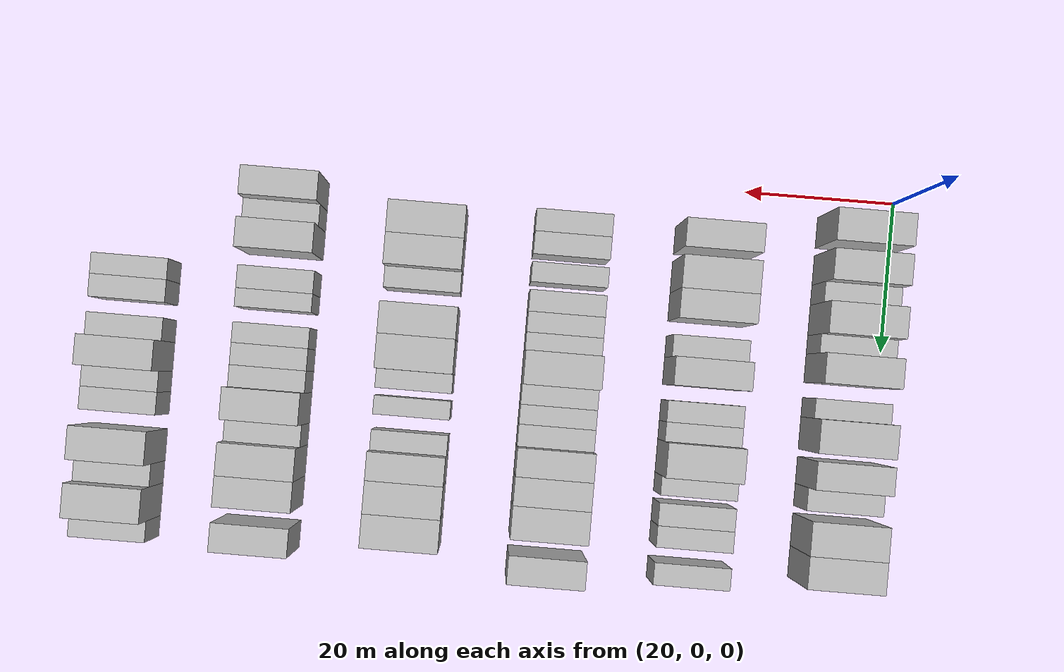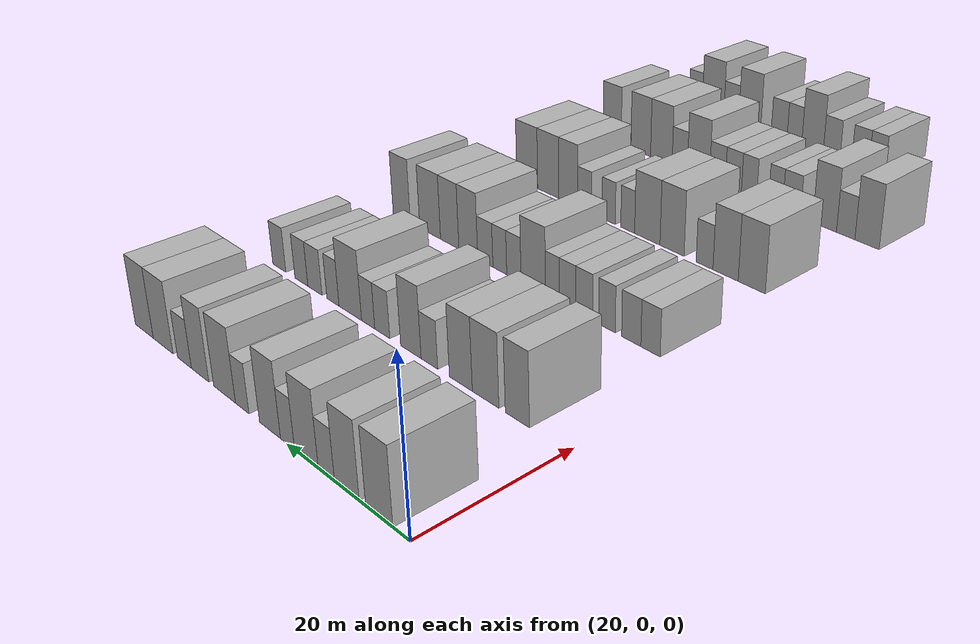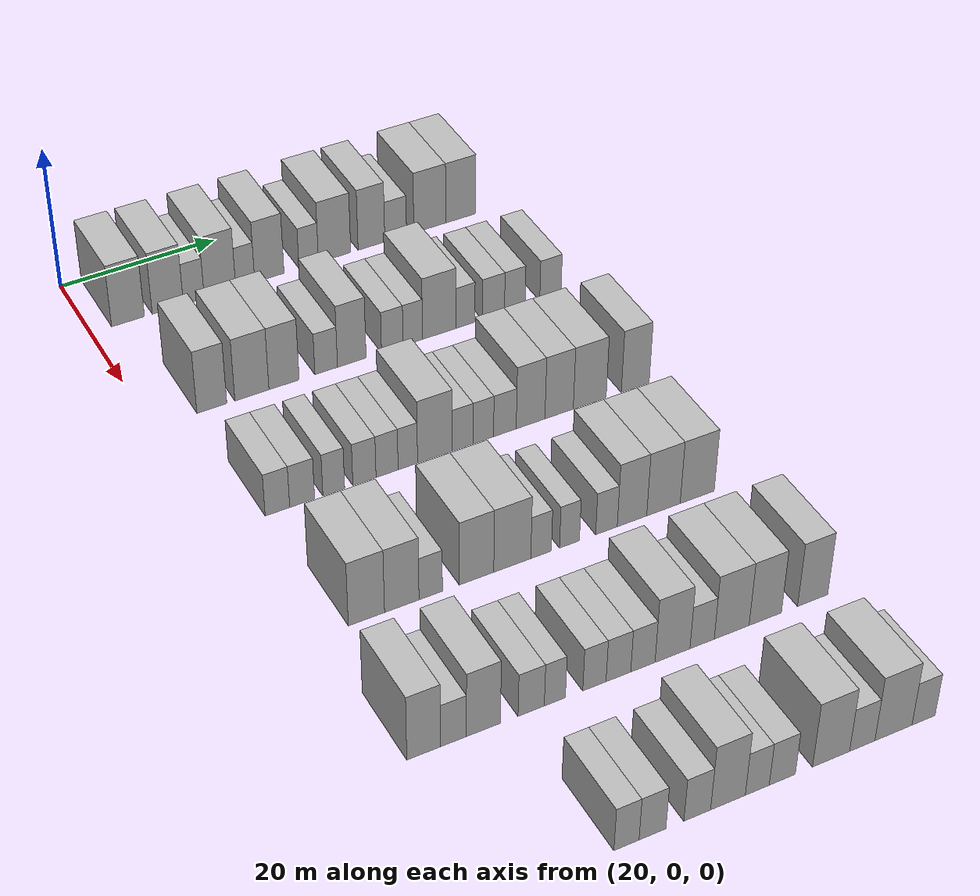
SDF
<sdf version="1.6">
 <world name="default">
  <model name="building_89">
   <static>1</static>
   <pose>25.0000 4.6920 0 0.000000 0.000000 0.000000</pose>
   <link name="link">
    <pose>0 0 4.50 0 0 0</pose>
    <collision name="collision"><geometry><box><size>10.0000 4.1601 9.0000</size></box></geometry></collision>
    <visual name="visual">
     <cast_shadows>0</cast_shadows>
     <geometry><box><size>10.0000 4.1601 9.0000</size></box></geometry>
     <material>
      <script>
       <uri>model://HANNAS_wall/materials/scripts</uri>
       <uri>model://HANNAS_wall/materials/textures</uri>
       <name>vrc/HANNAS_wall</name>
      </script>
     </material>
    </visual>
   </link>
  </model>
  <model name="building_90">
   <static>1</static>
   <pose>25.0000 9.7710 0 0.000000 0.000000 0.000000</pose>
   <link name="link">
    <pose>0 0 4.50 0 0 0</pose>
    <collision name="collision"><geometry><box><size>10.0000 3.9978 9.0000</size></box></geometry></collision>
    <visual name="visual">
     <cast_shadows>0</cast_shadows>
     <geometry><box><size>10.0000 3.9978 9.0000</size></box></geometry>
     <material>
      <script>
       <uri>model://HANNAS_wall/materials/scripts</uri>
       <uri>model://HANNAS_wall/materials/textures</uri>
       <name>vrc/HANNAS_wall</name>
      </script>
     </material>
    </visual>
   </link>
  </model>
  <model name="building_91">
   <static>1</static>
   <pose>25.0000 13.1194 0 0.000000 0.000000 0.000000</pose>
   <link name="link">
    <pose>0 0 3.00 0 0 0</pose>
    <collision name="collision"><geometry><box><size>10.0000 2.6990 6.0000</size></box></geometry></collision>
    <visual name="visual">
     <cast_shadows>0</cast_shadows>
     <geometry><box><size>10.0000 2.6990 6.0000</size></box></geometry>
     <material>
      <script>
       <uri>model://HANNAS_wall/materials/scripts</uri>
       <uri>model://HANNAS_wall/materials/textures</uri>
       <name>vrc/HANNAS_wall</name>
      </script>
     </material>
    </visual>
   </link>
  </model>
  <model name="building_92">
   <static>1</static>
   <pose>25.0000 16.5241 0 0.000000 0.000000 0.000000</pose>
   <link name="link">
    <pose>0 0 4.50 0 0 0</pose>
    <collision name="collision"><geometry><box><size>10.0000 4.1104 9.0000</size></box></geometry></collision>
    <visual name="visual">
     <cast_shadows>0</cast_shadows>
     <geometry><box><size>10.0000 4.1104 9.0000</size></box></geometry>
     <material>
      <script>
       <uri>model://HANNAS_wall/materials/scripts</uri>
       <uri>model://HANNAS_wall/materials/textures</uri>
       <name>vrc/HANNAS_wall</name>
      </script>
     </material>
    </visual>
   </link>
  </model>
  <model name="building_93">
   <static>1</static>
   <pose>25.0000 19.8268 0 0.000000 0.000000 0.000000</pose>
   <link name="link">
    <pose>0 0 3.00 0 0 0</pose>
    <collision name="collision"><geometry><box><size>10.0000 2.4949 6.0000</size></box></geometry></collision>
    <visual name="visual">
     <cast_shadows>0</cast_shadows>
     <geometry><box><size>10.0000 2.4949 6.0000</size></box></geometry>
     <material>
      <script>
       <uri>model://HANNAS_wall/materials/scripts</uri>
       <uri>model://HANNAS_wall/materials/textures</uri>
       <name>vrc/HANNAS_wall</name>
      </script>
     </material>
    </visual>
   </link>
  </model>
  <model name="building_94">
   <static>1</static>
   <pose>25.0000 23.0101 0 0.000000 0.000000 0.000000</pose>
   <link name="link">
    <pose>0 0 4.50 0 0 0</pose>
    <collision name="collision"><geometry><box><size>10.0000 3.8717 9.0000</size></box></geometry></collision>
    <visual name="visual">
     <cast_shadows>0</cast_shadows>
     <geometry><box><size>10.0000 3.8717 9.0000</size></box></geometry>
     <material>
      <script>
       <uri>model://HANNAS_wall/materials/scripts</uri>
       <uri>model://HANNAS_wall/materials/textures</uri>
       <name>vrc/HANNAS_wall</name>
      </script>
     </material>
    </visual>
   </link>
  </model>
  <model name="building_95">
   <static>1</static>
   <pose>25.0000 28.2499 0 0.000000 0.000000 0.000000</pose>
   <link name="link">
    <pose>0 0 3.00 0 0 0</pose>
    <collision name="collision"><geometry><box><size>10.0000 2.6081 6.0000</size></box></geometry></collision>
    <visual name="visual">
     <cast_shadows>0</cast_shadows>
     <geometry><box><size>10.0000 2.6081 6.0000</size></box></geometry>
     <material>
      <script>
       <uri>model://HANNAS_wall/materials/scripts</uri>
       <uri>model://HANNAS_wall/materials/textures</uri>
       <name>vrc/HANNAS_wall</name>
      </script>
     </material>
    </visual>
   </link>
  </model>
  <model name="building_96">
   <static>1</static>
   <pose>25.0000 31.7332 0 0.000000 0.000000 0.000000</pose>
   <link name="link">
    <pose>0 0 4.50 0 0 0</pose>
    <collision name="collision"><geometry><box><size>10.0000 4.3585 9.0000</size></box></geometry></collision>
    <visual name="visual">
     <cast_shadows>0</cast_shadows>
     <geometry><box><size>10.0000 4.3585 9.0000</size></box></geometry>
     <material>
      <script>
       <uri>model://HANNAS_wall/materials/scripts</uri>
       <uri>model://HANNAS_wall/materials/textures</uri>
       <name>vrc/HANNAS_wall</name>
      </script>
     </material>
    </visual>
   </link>
  </model>
  <model name="building_97">
   <static>1</static>
   <pose>25.0000 36.7362 0 0.000000 0.000000 0.000000</pose>
   <link name="link">
    <pose>0 0 4.50 0 0 0</pose>
    <collision name="collision"><geometry><box><size>10.0000 3.6474 9.0000</size></box></geometry></collision>
    <visual name="visual">
     <cast_shadows>0</cast_shadows>
     <geometry><box><size>10.0000 3.6474 9.0000</size></box></geometry>
     <material>
      <script>
       <uri>model://HANNAS_wall/materials/scripts</uri>
       <uri>model://HANNAS_wall/materials/textures</uri>
       <name>vrc/HANNAS_wall</name>
      </script>
     </material>
    </visual>
   </link>
  </model>
  <model name="building_98">
   <static>1</static>
   <pose>25.0000 40.0563 0 0.000000 0.000000 0.000000</pose>
   <link name="link">
    <pose>0 0 3.00 0 0 0</pose>
    <collision name="collision"><geometry><box><size>10.0000 2.9929 6.0000</size></box></geometry></collision>
    <visual name="visual">
     <cast_shadows>0</cast_shadows>
     <geometry><box><size>10.0000 2.9929 6.0000</size></box></geometry>
     <material>
      <script>
       <uri>model://HANNAS_wall/materials/scripts</uri>
       <uri>model://HANNAS_wall/materials/textures</uri>
       <name>vrc/HANNAS_wall</name>
      </script>
     </material>
    </visual>
   </link>
  </model>
  <model name="building_99">
   <static>1</static>
   <pose>25.0000 44.7683 0 0.000000 0.000000 0.000000</pose>
   <link name="link">
    <pose>0 0 4.50 0 0 0</pose>
    <collision name="collision"><geometry><box><size>10.0000 4.4310 9.0000</size></box></geometry></collision>
    <visual name="visual">
     <cast_shadows>0</cast_shadows>
     <geometry><box><size>10.0000 4.4310 9.0000</size></box></geometry>
     <material>
      <script>
       <uri>model://HANNAS_wall/materials/scripts</uri>
       <uri>model://HANNAS_wall/materials/textures</uri>
       <name>vrc/HANNAS_wall</name>
      </script>
     </material>
    </visual>
   </link>
  </model>
  <model name="building_100">
   <static>1</static>
   <pose>25.0000 49.0844 0 0.000000 0.000000 0.000000</pose>
   <link name="link">
    <pose>0 0 4.50 0 0 0</pose>
    <collision name="collision"><geometry><box><size>10.0000 4.2014 9.0000</size></box></geometry></collision>
    <visual name="visual">
     <cast_shadows>0</cast_shadows>
     <geometry><box><size>10.0000 4.2014 9.0000</size></box></geometry>
     <material>
      <script>
       <uri>model://HANNAS_wall/materials/scripts</uri>
       <uri>model://HANNAS_wall/materials/textures</uri>
       <name>vrc/HANNAS_wall</name>
      </script>
     </material>
    </visual>
   </link>
  </model>
  <model name="building_239">
   <static>1</static>
   <pose>44.0000 7.3406 0 0.000000 0.000000 0.000000</pose>
   <link name="link">
    <pose>0 0 4.50 0 0 0</pose>
    <collision name="collision"><geometry><box><size>10.0000 3.6854 9.0000</size></box></geometry></collision>
    <visual name="visual">
     <cast_shadows>0</cast_shadows>
     <geometry><box><size>10.0000 3.6854 9.0000</size></box></geometry>
     <material>
      <script>
       <uri>model://HANNAS_wall/materials/scripts</uri>
       <uri>model://HANNAS_wall/materials/textures</uri>
       <name>vrc/HANNAS_wall</name>
      </script>
     </material>
    </visual>
   </link>
  </model>
  <model name="building_240">
   <static>1</static>
   <pose>44.0000 12.3096 0 0.000000 0.000000 0.000000</pose>
   <link name="link">
    <pose>0 0 4.50 0 0 0</pose>
    <collision name="collision"><geometry><box><size>10.0000 4.2525 9.0000</size></box></geometry></collision>
    <visual name="visual">
     <cast_shadows>0</cast_shadows>
     <geometry><box><size>10.0000 4.2525 9.0000</size></box></geometry>
     <material>
      <script>
       <uri>model://HANNAS_wall/materials/scripts</uri>
       <uri>model://HANNAS_wall/materials/textures</uri>
       <name>vrc/HANNAS_wall</name>
      </script>
     </material>
    </visual>
   </link>
  </model>
  <model name="building_241">
   <static>1</static>
   <pose>44.0000 16.3384 0 0.000000 0.000000 0.000000</pose>
   <link name="link">
    <pose>0 0 4.50 0 0 0</pose>
    <collision name="collision"><geometry><box><size>10.0000 3.8050 9.0000</size></box></geometry></collision>
    <visual name="visual">
     <cast_shadows>0</cast_shadows>
     <geometry><box><size>10.0000 3.8050 9.0000</size></box></geometry>
     <material>
      <script>
       <uri>model://HANNAS_wall/materials/scripts</uri>
       <uri>model://HANNAS_wall/materials/textures</uri>
       <name>vrc/HANNAS_wall</name>
      </script>
     </material>
    </visual>
   </link>
  </model>
  <model name="building_242">
   <static>1</static>
   <pose>44.0000 21.6844 0 0.000000 0.000000 0.000000</pose>
   <link name="link">
    <pose>0 0 3.00 0 0 0</pose>
    <collision name="collision"><geometry><box><size>10.0000 2.8870 6.0000</size></box></geometry></collision>
    <visual name="visual">
     <cast_shadows>0</cast_shadows>
     <geometry><box><size>10.0000 2.8870 6.0000</size></box></geometry>
     <material>
      <script>
       <uri>model://HANNAS_wall/materials/scripts</uri>
       <uri>model://HANNAS_wall/materials/textures</uri>
       <name>vrc/HANNAS_wall</name>
      </script>
     </material>
    </visual>
   </link>
  </model>
  <model name="building_243">
   <static>1</static>
   <pose>44.0000 24.9658 0 0.000000 0.000000 0.000000</pose>
   <link name="link">
    <pose>0 0 4.50 0 0 0</pose>
    <collision name="collision"><geometry><box><size>10.0000 3.6758 9.0000</size></box></geometry></collision>
    <visual name="visual">
     <cast_shadows>0</cast_shadows>
     <geometry><box><size>10.0000 3.6758 9.0000</size></box></geometry>
     <material>
      <script>
       <uri>model://HANNAS_wall/materials/scripts</uri>
       <uri>model://HANNAS_wall/materials/textures</uri>
       <name>vrc/HANNAS_wall</name>
      </script>
     </material>
    </visual>
   </link>
  </model>
  <model name="building_244">
   <static>1</static>
   <pose>44.0000 30.2083 0 0.000000 0.000000 0.000000</pose>
   <link name="link">
    <pose>0 0 3.00 0 0 0</pose>
    <collision name="collision"><geometry><box><size>10.0000 2.8091 6.0000</size></box></geometry></collision>
    <visual name="visual">
     <cast_shadows>0</cast_shadows>
     <geometry><box><size>10.0000 2.8091 6.0000</size></box></geometry>
     <material>
      <script>
       <uri>model://HANNAS_wall/materials/scripts</uri>
       <uri>model://HANNAS_wall/materials/textures</uri>
       <name>vrc/HANNAS_wall</name>
      </script>
     </material>
    </visual>
   </link>
  </model>
  <model name="building_245">
   <static>1</static>
   <pose>44.0000 32.8833 0 0.000000 0.000000 0.000000</pose>
   <link name="link">
    <pose>0 0 3.00 0 0 0</pose>
    <collision name="collision"><geometry><box><size>10.0000 2.5409 6.0000</size></box></geometry></collision>
    <visual name="visual">
     <cast_shadows>0</cast_shadows>
     <geometry><box><size>10.0000 2.5409 6.0000</size></box></geometry>
     <material>
      <script>
       <uri>model://HANNAS_wall/materials/scripts</uri>
       <uri>model://HANNAS_wall/materials/textures</uri>
       <name>vrc/HANNAS_wall</name>
      </script>
     </material>
    </visual>
   </link>
  </model>
  <model name="building_246">
   <static>1</static>
   <pose>44.0000 36.3884 0 0.000000 0.000000 0.000000</pose>
   <link name="link">
    <pose>0 0 4.50 0 0 0</pose>
    <collision name="collision"><geometry><box><size>10.0000 4.4693 9.0000</size></box></geometry></collision>
    <visual name="visual">
     <cast_shadows>0</cast_shadows>
     <geometry><box><size>10.0000 4.4693 9.0000</size></box></geometry>
     <material>
      <script>
       <uri>model://HANNAS_wall/materials/scripts</uri>
       <uri>model://HANNAS_wall/materials/textures</uri>
       <name>vrc/HANNAS_wall</name>
      </script>
     </material>
    </visual>
   </link>
  </model>
  <model name="building_247">
   <static>1</static>
   <pose>44.0000 39.8651 0 0.000000 0.000000 0.000000</pose>
   <link name="link">
    <pose>0 0 3.00 0 0 0</pose>
    <collision name="collision"><geometry><box><size>10.0000 2.4839 6.0000</size></box></geometry></collision>
    <visual name="visual">
     <cast_shadows>0</cast_shadows>
     <geometry><box><size>10.0000 2.4839 6.0000</size></box></geometry>
     <material>
      <script>
       <uri>model://HANNAS_wall/materials/scripts</uri>
       <uri>model://HANNAS_wall/materials/textures</uri>
       <name>vrc/HANNAS_wall</name>
      </script>
     </material>
    </visual>
   </link>
  </model>
  <model name="building_248">
   <static>1</static>
   <pose>44.0000 43.5948 0 0.000000 0.000000 0.000000</pose>
   <link name="link">
    <pose>0 0 3.00 0 0 0</pose>
    <collision name="collision"><geometry><box><size>10.0000 2.9757 6.0000</size></box></geometry></collision>
    <visual name="visual">
     <cast_shadows>0</cast_shadows>
     <geometry><box><size>10.0000 2.9757 6.0000</size></box></geometry>
     <material>
      <script>
       <uri>model://HANNAS_wall/materials/scripts</uri>
       <uri>model://HANNAS_wall/materials/textures</uri>
       <name>vrc/HANNAS_wall</name>
      </script>
     </material>
    </visual>
   </link>
  </model>
  <model name="building_249">
   <static>1</static>
   <pose>44.0000 46.4749 0 0.000000 0.000000 0.000000</pose>
   <link name="link">
    <pose>0 0 3.00 0 0 0</pose>
    <collision name="collision"><geometry><box><size>10.0000 2.7844 6.0000</size></box></geometry></collision>
    <visual name="visual">
     <cast_shadows>0</cast_shadows>
     <geometry><box><size>10.0000 2.7844 6.0000</size></box></geometry>
     <material>
      <script>
       <uri>model://HANNAS_wall/materials/scripts</uri>
       <uri>model://HANNAS_wall/materials/textures</uri>
       <name>vrc/HANNAS_wall</name>
      </script>
     </material>
    </visual>
   </link>
  </model>
  <model name="building_250">
   <static>1</static>
   <pose>44.0000 51.3194 0 0.000000 0.000000 0.000000</pose>
   <link name="link">
    <pose>0 0 3.00 0 0 0</pose>
    <collision name="collision"><geometry><box><size>10.0000 2.9046 6.0000</size></box></geometry></collision>
    <visual name="visual">
     <cast_shadows>0</cast_shadows>
     <geometry><box><size>10.0000 2.9046 6.0000</size></box></geometry>
     <material>
      <script>
       <uri>model://HANNAS_wall/materials/scripts</uri>
       <uri>model://HANNAS_wall/materials/textures</uri>
       <name>vrc/HANNAS_wall</name>
      </script>
     </material>
    </visual>
   </link>
  </model>
  <model name="building_414">
   <static>1</static>
   <pose>63.0000 6.9275 0 0.000000 0.000000 0.000000</pose>
   <link name="link">
    <pose>0 0 3.00 0 0 0</pose>
    <collision name="collision"><geometry><box><size>10.0000 2.9230 6.0000</size></box></geometry></collision>
    <visual name="visual">
     <cast_shadows>0</cast_shadows>
     <geometry><box><size>10.0000 2.9230 6.0000</size></box></geometry>
     <material>
      <script>
       <uri>model://HANNAS_wall/materials/scripts</uri>
       <uri>model://HANNAS_wall/materials/textures</uri>
       <name>vrc/HANNAS_wall</name>
      </script>
     </material>
    </visual>
   </link>
  </model>
  <model name="building_415">
   <static>1</static>
   <pose>63.0000 9.8773 0 0.000000 0.000000 0.000000</pose>
   <link name="link">
    <pose>0 0 3.00 0 0 0</pose>
    <collision name="collision"><geometry><box><size>10.0000 2.9767 6.0000</size></box></geometry></collision>
    <visual name="visual">
     <cast_shadows>0</cast_shadows>
     <geometry><box><size>10.0000 2.9767 6.0000</size></box></geometry>
     <material>
      <script>
       <uri>model://HANNAS_wall/materials/scripts</uri>
       <uri>model://HANNAS_wall/materials/textures</uri>
       <name>vrc/HANNAS_wall</name>
      </script>
     </material>
    </visual>
   </link>
  </model>
  <model name="building_416">
   <static>1</static>
   <pose>63.0000 13.6815 0 0.000000 0.000000 0.000000</pose>
   <link name="link">
    <pose>0 0 3.00 0 0 0</pose>
    <collision name="collision"><geometry><box><size>10.0000 2.6316 6.0000</size></box></geometry></collision>
    <visual name="visual">
     <cast_shadows>0</cast_shadows>
     <geometry><box><size>10.0000 2.6316 6.0000</size></box></geometry>
     <material>
      <script>
       <uri>model://HANNAS_wall/materials/scripts</uri>
       <uri>model://HANNAS_wall/materials/textures</uri>
       <name>vrc/HANNAS_wall</name>
      </script>
     </material>
    </visual>
   </link>
  </model>
  <model name="building_417">
   <static>1</static>
   <pose>63.0000 17.4109 0 0.000000 0.000000 0.000000</pose>
   <link name="link">
    <pose>0 0 3.00 0 0 0</pose>
    <collision name="collision"><geometry><box><size>10.0000 2.8272 6.0000</size></box></geometry></collision>
    <visual name="visual">
     <cast_shadows>0</cast_shadows>
     <geometry><box><size>10.0000 2.8272 6.0000</size></box></geometry>
     <material>
      <script>
       <uri>model://HANNAS_wall/materials/scripts</uri>
       <uri>model://HANNAS_wall/materials/textures</uri>
       <name>vrc/HANNAS_wall</name>
      </script>
     </material>
    </visual>
   </link>
  </model>
  <model name="building_418">
   <static>1</static>
   <pose>63.0000 20.1795 0 0.000000 0.000000 0.000000</pose>
   <link name="link">
    <pose>0 0 3.00 0 0 0</pose>
    <collision name="collision"><geometry><box><size>10.0000 2.7101 6.0000</size></box></geometry></collision>
    <visual name="visual">
     <cast_shadows>0</cast_shadows>
     <geometry><box><size>10.0000 2.7101 6.0000</size></box></geometry>
     <material>
      <script>
       <uri>model://HANNAS_wall/materials/scripts</uri>
       <uri>model://HANNAS_wall/materials/textures</uri>
       <name>vrc/HANNAS_wall</name>
      </script>
     </material>
    </visual>
   </link>
  </model>
  <model name="building_419">
   <static>1</static>
   <pose>63.0000 22.7363 0 0.000000 0.000000 0.000000</pose>
   <link name="link">
    <pose>0 0 3.00 0 0 0</pose>
    <collision name="collision"><geometry><box><size>10.0000 2.4035 6.0000</size></box></geometry></collision>
    <visual name="visual">
     <cast_shadows>0</cast_shadows>
     <geometry><box><size>10.0000 2.4035 6.0000</size></box></geometry>
     <material>
      <script>
       <uri>model://HANNAS_wall/materials/scripts</uri>
       <uri>model://HANNAS_wall/materials/textures</uri>
       <name>vrc/HANNAS_wall</name>
      </script>
     </material>
    </visual>
   </link>
  </model>
  <model name="building_420">
   <static>1</static>
   <pose>63.0000 26.1138 0 0.000000 0.000000 0.000000</pose>
   <link name="link">
    <pose>0 0 4.50 0 0 0</pose>
    <collision name="collision"><geometry><box><size>10.0000 4.3514 9.0000</size></box></geometry></collision>
    <visual name="visual">
     <cast_shadows>0</cast_shadows>
     <geometry><box><size>10.0000 4.3514 9.0000</size></box></geometry>
     <material>
      <script>
       <uri>model://HANNAS_wall/materials/scripts</uri>
       <uri>model://HANNAS_wall/materials/textures</uri>
       <name>vrc/HANNAS_wall</name>
      </script>
     </material>
    </visual>
   </link>
  </model>
  <model name="building_421">
   <static>1</static>
   <pose>63.0000 29.5994 0 0.000000 0.000000 0.000000</pose>
   <link name="link">
    <pose>0 0 3.00 0 0 0</pose>
    <collision name="collision"><geometry><box><size>10.0000 2.6199 6.0000</size></box></geometry></collision>
    <visual name="visual">
     <cast_shadows>0</cast_shadows>
     <geometry><box><size>10.0000 2.6199 6.0000</size></box></geometry>
     <material>
      <script>
       <uri>model://HANNAS_wall/materials/scripts</uri>
       <uri>model://HANNAS_wall/materials/textures</uri>
       <name>vrc/HANNAS_wall</name>
      </script>
     </material>
    </visual>
   </link>
  </model>
  <model name="building_422">
   <static>1</static>
   <pose>63.0000 32.1973 0 0.000000 0.000000 0.000000</pose>
   <link name="link">
    <pose>0 0 3.00 0 0 0</pose>
    <collision name="collision"><geometry><box><size>10.0000 2.5759 6.0000</size></box></geometry></collision>
    <visual name="visual">
     <cast_shadows>0</cast_shadows>
     <geometry><box><size>10.0000 2.5759 6.0000</size></box></geometry>
     <material>
      <script>
       <uri>model://HANNAS_wall/materials/scripts</uri>
       <uri>model://HANNAS_wall/materials/textures</uri>
       <name>vrc/HANNAS_wall</name>
      </script>
     </material>
    </visual>
   </link>
  </model>
  <model name="building_423">
   <static>1</static>
   <pose>63.0000 34.9291 0 0.000000 0.000000 0.000000</pose>
   <link name="link">
    <pose>0 0 3.00 0 0 0</pose>
    <collision name="collision"><geometry><box><size>10.0000 2.8878 6.0000</size></box></geometry></collision>
    <visual name="visual">
     <cast_shadows>0</cast_shadows>
     <geometry><box><size>10.0000 2.8878 6.0000</size></box></geometry>
     <material>
      <script>
       <uri>model://HANNAS_wall/materials/scripts</uri>
       <uri>model://HANNAS_wall/materials/textures</uri>
       <name>vrc/HANNAS_wall</name>
      </script>
     </material>
    </visual>
   </link>
  </model>
  <model name="building_424">
   <static>1</static>
   <pose>63.0000 38.2183 0 0.000000 0.000000 0.000000</pose>
   <link name="link">
    <pose>0 0 4.50 0 0 0</pose>
    <collision name="collision"><geometry><box><size>10.0000 3.6905 9.0000</size></box></geometry></collision>
    <visual name="visual">
     <cast_shadows>0</cast_shadows>
     <geometry><box><size>10.0000 3.6905 9.0000</size></box></geometry>
     <material>
      <script>
       <uri>model://HANNAS_wall/materials/scripts</uri>
       <uri>model://HANNAS_wall/materials/textures</uri>
       <name>vrc/HANNAS_wall</name>
      </script>
     </material>
    </visual>
   </link>
  </model>
  <model name="building_425">
   <static>1</static>
   <pose>63.0000 41.9065 0 0.000000 0.000000 0.000000</pose>
   <link name="link">
    <pose>0 0 4.50 0 0 0</pose>
    <collision name="collision"><geometry><box><size>10.0000 3.6858 9.0000</size></box></geometry></collision>
    <visual name="visual">
     <cast_shadows>0</cast_shadows>
     <geometry><box><size>10.0000 3.6858 9.0000</size></box></geometry>
     <material>
      <script>
       <uri>model://HANNAS_wall/materials/scripts</uri>
       <uri>model://HANNAS_wall/materials/textures</uri>
       <name>vrc/HANNAS_wall</name>
      </script>
     </material>
    </visual>
   </link>
  </model>
  <model name="building_426">
   <static>1</static>
   <pose>63.0000 45.9029 0 0.000000 0.000000 0.000000</pose>
   <link name="link">
    <pose>0 0 4.50 0 0 0</pose>
    <collision name="collision"><geometry><box><size>10.0000 4.3070 9.0000</size></box></geometry></collision>
    <visual name="visual">
     <cast_shadows>0</cast_shadows>
     <geometry><box><size>10.0000 4.3070 9.0000</size></box></geometry>
     <material>
      <script>
       <uri>model://HANNAS_wall/materials/scripts</uri>
       <uri>model://HANNAS_wall/materials/textures</uri>
       <name>vrc/HANNAS_wall</name>
      </script>
     </material>
    </visual>
   </link>
  </model>
  <model name="building_427">
   <static>1</static>
   <pose>63.0000 51.9101 0 0.000000 0.000000 0.000000</pose>
   <link name="link">
    <pose>0 0 4.50 0 0 0</pose>
    <collision name="collision"><geometry><box><size>10.0000 3.7073 9.0000</size></box></geometry></collision>
    <visual name="visual">
     <cast_shadows>0</cast_shadows>
     <geometry><box><size>10.0000 3.7073 9.0000</size></box></geometry>
     <material>
      <script>
       <uri>model://HANNAS_wall/materials/scripts</uri>
       <uri>model://HANNAS_wall/materials/textures</uri>
       <name>vrc/HANNAS_wall</name>
      </script>
     </material>
    </visual>
   </link>
  </model>
  <model name="building_583">
   <static>1</static>
   <pose>82.0000 8.4536 0 0.000000 0.000000 0.000000</pose>
   <link name="link">
    <pose>0 0 4.50 0 0 0</pose>
    <collision name="collision"><geometry><box><size>10.0000 4.1652 9.0000</size></box></geometry></collision>
    <visual name="visual">
     <cast_shadows>0</cast_shadows>
     <geometry><box><size>10.0000 4.1652 9.0000</size></box></geometry>
     <material>
      <script>
       <uri>model://HANNAS_wall/materials/scripts</uri>
       <uri>model://HANNAS_wall/materials/textures</uri>
       <name>vrc/HANNAS_wall</name>
      </script>
     </material>
    </visual>
   </link>
  </model>
  <model name="building_584">
   <static>1</static>
   <pose>82.0000 12.5389 0 0.000000 0.000000 0.000000</pose>
   <link name="link">
    <pose>0 0 4.50 0 0 0</pose>
    <collision name="collision"><geometry><box><size>10.0000 4.0054 9.0000</size></box></geometry></collision>
    <visual name="visual">
     <cast_shadows>0</cast_shadows>
     <geometry><box><size>10.0000 4.0054 9.0000</size></box></geometry>
     <material>
      <script>
       <uri>model://HANNAS_wall/materials/scripts</uri>
       <uri>model://HANNAS_wall/materials/textures</uri>
       <name>vrc/HANNAS_wall</name>
      </script>
     </material>
    </visual>
   </link>
  </model>
  <model name="building_585">
   <static>1</static>
   <pose>82.0000 15.9127 0 0.000000 0.000000 0.000000</pose>
   <link name="link">
    <pose>0 0 3.00 0 0 0</pose>
    <collision name="collision"><geometry><box><size>10.0000 2.7421 6.0000</size></box></geometry></collision>
    <visual name="visual">
     <cast_shadows>0</cast_shadows>
     <geometry><box><size>10.0000 2.7421 6.0000</size></box></geometry>
     <material>
      <script>
       <uri>model://HANNAS_wall/materials/scripts</uri>
       <uri>model://HANNAS_wall/materials/textures</uri>
       <name>vrc/HANNAS_wall</name>
      </script>
     </material>
    </visual>
   </link>
  </model>
  <model name="building_586">
   <static>1</static>
   <pose>82.0000 21.3318 0 0.000000 0.000000 0.000000</pose>
   <link name="link">
    <pose>0 0 4.50 0 0 0</pose>
    <collision name="collision"><geometry><box><size>10.0000 4.0961 9.0000</size></box></geometry></collision>
    <visual name="visual">
     <cast_shadows>0</cast_shadows>
     <geometry><box><size>10.0000 4.0961 9.0000</size></box></geometry>
     <material>
      <script>
       <uri>model://HANNAS_wall/materials/scripts</uri>
       <uri>model://HANNAS_wall/materials/textures</uri>
       <name>vrc/HANNAS_wall</name>
      </script>
     </material>
    </visual>
   </link>
  </model>
  <model name="building_587">
   <static>1</static>
   <pose>82.0000 25.6064 0 0.000000 0.000000 0.000000</pose>
   <link name="link">
    <pose>0 0 4.50 0 0 0</pose>
    <collision name="collision"><geometry><box><size>10.0000 4.4531 9.0000</size></box></geometry></collision>
    <visual name="visual">
     <cast_shadows>0</cast_shadows>
     <geometry><box><size>10.0000 4.4531 9.0000</size></box></geometry>
     <material>
      <script>
       <uri>model://HANNAS_wall/materials/scripts</uri>
       <uri>model://HANNAS_wall/materials/textures</uri>
       <name>vrc/HANNAS_wall</name>
      </script>
     </material>
    </visual>
   </link>
  </model>
  <model name="building_588">
   <static>1</static>
   <pose>82.0000 29.0835 0 0.000000 0.000000 0.000000</pose>
   <link name="link">
    <pose>0 0 3.00 0 0 0</pose>
    <collision name="collision"><geometry><box><size>10.0000 2.5010 6.0000</size></box></geometry></collision>
    <visual name="visual">
     <cast_shadows>0</cast_shadows>
     <geometry><box><size>10.0000 2.5010 6.0000</size></box></geometry>
     <material>
      <script>
       <uri>model://HANNAS_wall/materials/scripts</uri>
       <uri>model://HANNAS_wall/materials/textures</uri>
       <name>vrc/HANNAS_wall</name>
      </script>
     </material>
    </visual>
   </link>
  </model>
  <model name="building_589">
   <static>1</static>
   <pose>82.0000 32.5550 0 0.000000 0.000000 0.000000</pose>
   <link name="link">
    <pose>0 0 3.00 0 0 0</pose>
    <collision name="collision"><geometry><box><size>10.0000 2.4420 6.0000</size></box></geometry></collision>
    <visual name="visual">
     <cast_shadows>0</cast_shadows>
     <geometry><box><size>10.0000 2.4420 6.0000</size></box></geometry>
     <material>
      <script>
       <uri>model://HANNAS_wall/materials/scripts</uri>
       <uri>model://HANNAS_wall/materials/textures</uri>
       <name>vrc/HANNAS_wall</name>
      </script>
     </material>
    </visual>
   </link>
  </model>
  <model name="building_590">
   <static>1</static>
   <pose>82.0000 37.1167 0 0.000000 0.000000 0.000000</pose>
   <link name="link">
    <pose>0 0 3.00 0 0 0</pose>
    <collision name="collision"><geometry><box><size>10.0000 2.6815 6.0000</size></box></geometry></collision>
    <visual name="visual">
     <cast_shadows>0</cast_shadows>
     <geometry><box><size>10.0000 2.6815 6.0000</size></box></geometry>
     <material>
      <script>
       <uri>model://HANNAS_wall/materials/scripts</uri>
       <uri>model://HANNAS_wall/materials/textures</uri>
       <name>vrc/HANNAS_wall</name>
      </script>
     </material>
    </visual>
   </link>
  </model>
  <model name="building_591">
   <static>1</static>
   <pose>82.0000 40.3028 0 0.000000 0.000000 0.000000</pose>
   <link name="link">
    <pose>0 0 4.50 0 0 0</pose>
    <collision name="collision"><geometry><box><size>10.0000 3.6908 9.0000</size></box></geometry></collision>
    <visual name="visual">
     <cast_shadows>0</cast_shadows>
     <geometry><box><size>10.0000 3.6908 9.0000</size></box></geometry>
     <material>
      <script>
       <uri>model://HANNAS_wall/materials/scripts</uri>
       <uri>model://HANNAS_wall/materials/textures</uri>
       <name>vrc/HANNAS_wall</name>
      </script>
     </material>
    </visual>
   </link>
  </model>
  <model name="building_592">
   <static>1</static>
   <pose>82.0000 44.2639 0 0.000000 0.000000 0.000000</pose>
   <link name="link">
    <pose>0 0 4.50 0 0 0</pose>
    <collision name="collision"><geometry><box><size>10.0000 4.2313 9.0000</size></box></geometry></collision>
    <visual name="visual">
     <cast_shadows>0</cast_shadows>
     <geometry><box><size>10.0000 4.2313 9.0000</size></box></geometry>
     <material>
      <script>
       <uri>model://HANNAS_wall/materials/scripts</uri>
       <uri>model://HANNAS_wall/materials/textures</uri>
       <name>vrc/HANNAS_wall</name>
      </script>
     </material>
    </visual>
   </link>
  </model>
  <model name="building_593">
   <static>1</static>
   <pose>82.0000 48.5502 0 0.000000 0.000000 0.000000</pose>
   <link name="link">
    <pose>0 0 4.50 0 0 0</pose>
    <collision name="collision"><geometry><box><size>10.0000 4.3413 9.0000</size></box></geometry></collision>
    <visual name="visual">
     <cast_shadows>0</cast_shadows>
     <geometry><box><size>10.0000 4.3413 9.0000</size></box></geometry>
     <material>
      <script>
       <uri>model://HANNAS_wall/materials/scripts</uri>
       <uri>model://HANNAS_wall/materials/textures</uri>
       <name>vrc/HANNAS_wall</name>
      </script>
     </material>
    </visual>
   </link>
  </model>
  <model name="building_759">
   <static>1</static>
   <pose>101.0000 5.4728 0 0.000000 0.000000 0.000000</pose>
   <link name="link">
    <pose>0 0 4.50 0 0 0</pose>
    <collision name="collision"><geometry><box><size>10.0000 3.6989 9.0000</size></box></geometry></collision>
    <visual name="visual">
     <cast_shadows>0</cast_shadows>
     <geometry><box><size>10.0000 3.6989 9.0000</size></box></geometry>
     <material>
      <script>
       <uri>model://HANNAS_wall/materials/scripts</uri>
       <uri>model://HANNAS_wall/materials/textures</uri>
       <name>vrc/HANNAS_wall</name>
      </script>
     </material>
    </visual>
   </link>
  </model>
  <model name="building_760">
   <static>1</static>
   <pose>101.0000 8.7571 0 0.000000 0.000000 0.000000</pose>
   <link name="link">
    <pose>0 0 3.00 0 0 0</pose>
    <collision name="collision"><geometry><box><size>10.0000 2.8697 6.0000</size></box></geometry></collision>
    <visual name="visual">
     <cast_shadows>0</cast_shadows>
     <geometry><box><size>10.0000 2.8697 6.0000</size></box></geometry>
     <material>
      <script>
       <uri>model://HANNAS_wall/materials/scripts</uri>
       <uri>model://HANNAS_wall/materials/textures</uri>
       <name>vrc/HANNAS_wall</name>
      </script>
     </material>
    </visual>
   </link>
  </model>
  <model name="building_761">
   <static>1</static>
   <pose>101.0000 12.0920 0 0.000000 0.000000 0.000000</pose>
   <link name="link">
    <pose>0 0 4.50 0 0 0</pose>
    <collision name="collision"><geometry><box><size>10.0000 3.8002 9.0000</size></box></geometry></collision>
    <visual name="visual">
     <cast_shadows>0</cast_shadows>
     <geometry><box><size>10.0000 3.8002 9.0000</size></box></geometry>
     <material>
      <script>
       <uri>model://HANNAS_wall/materials/scripts</uri>
       <uri>model://HANNAS_wall/materials/textures</uri>
       <name>vrc/HANNAS_wall</name>
      </script>
     </material>
    </visual>
   </link>
  </model>
  <model name="building_762">
   <static>1</static>
   <pose>101.0000 17.4846 0 0.000000 0.000000 0.000000</pose>
   <link name="link">
    <pose>0 0 3.00 0 0 0</pose>
    <collision name="collision"><geometry><box><size>10.0000 2.9850 6.0000</size></box></geometry></collision>
    <visual name="visual">
     <cast_shadows>0</cast_shadows>
     <geometry><box><size>10.0000 2.9850 6.0000</size></box></geometry>
     <material>
      <script>
       <uri>model://HANNAS_wall/materials/scripts</uri>
       <uri>model://HANNAS_wall/materials/textures</uri>
       <name>vrc/HANNAS_wall</name>
      </script>
     </material>
    </visual>
   </link>
  </model>
  <model name="building_763">
   <static>1</static>
   <pose>101.0000 20.1853 0 0.000000 0.000000 0.000000</pose>
   <link name="link">
    <pose>0 0 3.00 0 0 0</pose>
    <collision name="collision"><geometry><box><size>10.0000 2.4163 6.0000</size></box></geometry></collision>
    <visual name="visual">
     <cast_shadows>0</cast_shadows>
     <geometry><box><size>10.0000 2.4163 6.0000</size></box></geometry>
     <material>
      <script>
       <uri>model://HANNAS_wall/materials/scripts</uri>
       <uri>model://HANNAS_wall/materials/textures</uri>
       <name>vrc/HANNAS_wall</name>
      </script>
     </material>
    </visual>
   </link>
  </model>
  <model name="building_764">
   <static>1</static>
   <pose>101.0000 24.7415 0 0.000000 0.000000 0.000000</pose>
   <link name="link">
    <pose>0 0 3.00 0 0 0</pose>
    <collision name="collision"><geometry><box><size>10.0000 2.6962 6.0000</size></box></geometry></collision>
    <visual name="visual">
     <cast_shadows>0</cast_shadows>
     <geometry><box><size>10.0000 2.6962 6.0000</size></box></geometry>
     <material>
      <script>
       <uri>model://HANNAS_wall/materials/scripts</uri>
       <uri>model://HANNAS_wall/materials/textures</uri>
       <name>vrc/HANNAS_wall</name>
      </script>
     </material>
    </visual>
   </link>
  </model>
  <model name="building_765">
   <static>1</static>
   <pose>101.0000 27.5323 0 0.000000 0.000000 0.000000</pose>
   <link name="link">
    <pose>0 0 3.00 0 0 0</pose>
    <collision name="collision"><geometry><box><size>10.0000 2.8855 6.0000</size></box></geometry></collision>
    <visual name="visual">
     <cast_shadows>0</cast_shadows>
     <geometry><box><size>10.0000 2.8855 6.0000</size></box></geometry>
     <material>
      <script>
       <uri>model://HANNAS_wall/materials/scripts</uri>
       <uri>model://HANNAS_wall/materials/textures</uri>
       <name>vrc/HANNAS_wall</name>
      </script>
     </material>
    </visual>
   </link>
  </model>
  <model name="building_766">
   <static>1</static>
   <pose>101.0000 30.4062 0 0.000000 0.000000 0.000000</pose>
   <link name="link">
    <pose>0 0 3.00 0 0 0</pose>
    <collision name="collision"><geometry><box><size>10.0000 2.8623 6.0000</size></box></geometry></collision>
    <visual name="visual">
     <cast_shadows>0</cast_shadows>
     <geometry><box><size>10.0000 2.8623 6.0000</size></box></geometry>
     <material>
      <script>
       <uri>model://HANNAS_wall/materials/scripts</uri>
       <uri>model://HANNAS_wall/materials/textures</uri>
       <name>vrc/HANNAS_wall</name>
      </script>
     </material>
    </visual>
   </link>
  </model>
  <model name="building_767">
   <static>1</static>
   <pose>101.0000 33.9117 0 0.000000 0.000000 0.000000</pose>
   <link name="link">
    <pose>0 0 4.50 0 0 0</pose>
    <collision name="collision"><geometry><box><size>10.0000 4.1486 9.0000</size></box></geometry></collision>
    <visual name="visual">
     <cast_shadows>0</cast_shadows>
     <geometry><box><size>10.0000 4.1486 9.0000</size></box></geometry>
     <material>
      <script>
       <uri>model://HANNAS_wall/materials/scripts</uri>
       <uri>model://HANNAS_wall/materials/textures</uri>
       <name>vrc/HANNAS_wall</name>
      </script>
     </material>
    </visual>
   </link>
  </model>
  <model name="building_768">
   <static>1</static>
   <pose>101.0000 37.4457 0 0.000000 0.000000 0.000000</pose>
   <link name="link">
    <pose>0 0 3.00 0 0 0</pose>
    <collision name="collision"><geometry><box><size>10.0000 2.9194 6.0000</size></box></geometry></collision>
    <visual name="visual">
     <cast_shadows>0</cast_shadows>
     <geometry><box><size>10.0000 2.9194 6.0000</size></box></geometry>
     <material>
      <script>
       <uri>model://HANNAS_wall/materials/scripts</uri>
       <uri>model://HANNAS_wall/materials/textures</uri>
       <name>vrc/HANNAS_wall</name>
      </script>
     </material>
    </visual>
   </link>
  </model>
  <model name="building_769">
   <static>1</static>
   <pose>101.0000 41.0194 0 0.000000 0.000000 0.000000</pose>
   <link name="link">
    <pose>0 0 4.50 0 0 0</pose>
    <collision name="collision"><geometry><box><size>10.0000 4.2280 9.0000</size></box></geometry></collision>
    <visual name="visual">
     <cast_shadows>0</cast_shadows>
     <geometry><box><size>10.0000 4.2280 9.0000</size></box></geometry>
     <material>
      <script>
       <uri>model://HANNAS_wall/materials/scripts</uri>
       <uri>model://HANNAS_wall/materials/textures</uri>
       <name>vrc/HANNAS_wall</name>
      </script>
     </material>
    </visual>
   </link>
  </model>
  <model name="building_770">
   <static>1</static>
   <pose>101.0000 45.1135 0 0.000000 0.000000 0.000000</pose>
   <link name="link">
    <pose>0 0 4.50 0 0 0</pose>
    <collision name="collision"><geometry><box><size>10.0000 3.9603 9.0000</size></box></geometry></collision>
    <visual name="visual">
     <cast_shadows>0</cast_shadows>
     <geometry><box><size>10.0000 3.9603 9.0000</size></box></geometry>
     <material>
      <script>
       <uri>model://HANNAS_wall/materials/scripts</uri>
       <uri>model://HANNAS_wall/materials/textures</uri>
       <name>vrc/HANNAS_wall</name>
      </script>
     </material>
    </visual>
   </link>
  </model>
  <model name="building_771">
   <static>1</static>
   <pose>101.0000 50.9662 0 0.000000 0.000000 0.000000</pose>
   <link name="link">
    <pose>0 0 4.50 0 0 0</pose>
    <collision name="collision"><geometry><box><size>10.0000 3.7449 9.0000</size></box></geometry></collision>
    <visual name="visual">
     <cast_shadows>0</cast_shadows>
     <geometry><box><size>10.0000 3.7449 9.0000</size></box></geometry>
     <material>
      <script>
       <uri>model://HANNAS_wall/materials/scripts</uri>
       <uri>model://HANNAS_wall/materials/textures</uri>
       <name>vrc/HANNAS_wall</name>
      </script>
     </material>
    </visual>
   </link>
  </model>
  <model name="building_931">
   <static>1</static>
   <pose>120.0000 17.3421 0 0.000000 0.000000 0.000000</pose>
   <link name="link">
    <pose>0 0 3.00 0 0 0</pose>
    <collision name="collision"><geometry><box><size>10.0000 2.7497 6.0000</size></box></geometry></collision>
    <visual name="visual">
     <cast_shadows>0</cast_shadows>
     <geometry><box><size>10.0000 2.7497 6.0000</size></box></geometry>
     <material>
      <script>
       <uri>model://HANNAS_wall/materials/scripts</uri>
       <uri>model://HANNAS_wall/materials/textures</uri>
       <name>vrc/HANNAS_wall</name>
      </script>
     </material>
    </visual>
   </link>
  </model>
  <model name="building_932">
   <static>1</static>
   <pose>120.0000 20.2001 0 0.000000 0.000000 0.000000</pose>
   <link name="link">
    <pose>0 0 3.00 0 0 0</pose>
    <collision name="collision"><geometry><box><size>10.0000 2.9664 6.0000</size></box></geometry></collision>
    <visual name="visual">
     <cast_shadows>0</cast_shadows>
     <geometry><box><size>10.0000 2.9664 6.0000</size></box></geometry>
     <material>
      <script>
       <uri>model://HANNAS_wall/materials/scripts</uri>
       <uri>model://HANNAS_wall/materials/textures</uri>
       <name>vrc/HANNAS_wall</name>
      </script>
     </material>
    </visual>
   </link>
  </model>
  <model name="building_933">
   <static>1</static>
   <pose>120.0000 25.1759 0 0.000000 0.000000 0.000000</pose>
   <link name="link">
    <pose>0 0 3.00 0 0 0</pose>
    <collision name="collision"><geometry><box><size>10.0000 2.9852 6.0000</size></box></geometry></collision>
    <visual name="visual">
     <cast_shadows>0</cast_shadows>
     <geometry><box><size>10.0000 2.9852 6.0000</size></box></geometry>
     <material>
      <script>
       <uri>model://HANNAS_wall/materials/scripts</uri>
       <uri>model://HANNAS_wall/materials/textures</uri>
       <name>vrc/HANNAS_wall</name>
      </script>
     </material>
    </visual>
   </link>
  </model>
  <model name="building_934">
   <static>1</static>
   <pose>120.0000 28.6314 0 0.000000 0.000000 0.000000</pose>
   <link name="link">
    <pose>0 0 4.50 0 0 0</pose>
    <collision name="collision"><geometry><box><size>10.0000 3.9258 9.0000</size></box></geometry></collision>
    <visual name="visual">
     <cast_shadows>0</cast_shadows>
     <geometry><box><size>10.0000 3.9258 9.0000</size></box></geometry>
     <material>
      <script>
       <uri>model://HANNAS_wall/materials/scripts</uri>
       <uri>model://HANNAS_wall/materials/textures</uri>
       <name>vrc/HANNAS_wall</name>
      </script>
     </material>
    </visual>
   </link>
  </model>
  <model name="building_935">
   <static>1</static>
   <pose>120.0000 31.9633 0 0.000000 0.000000 0.000000</pose>
   <link name="link">
    <pose>0 0 3.00 0 0 0</pose>
    <collision name="collision"><geometry><box><size>10.0000 2.7381 6.0000</size></box></geometry></collision>
    <visual name="visual">
     <cast_shadows>0</cast_shadows>
     <geometry><box><size>10.0000 2.7381 6.0000</size></box></geometry>
     <material>
      <script>
       <uri>model://HANNAS_wall/materials/scripts</uri>
       <uri>model://HANNAS_wall/materials/textures</uri>
       <name>vrc/HANNAS_wall</name>
      </script>
     </material>
    </visual>
   </link>
  </model>
  <model name="building_936">
   <static>1</static>
   <pose>120.0000 34.8300 0 0.000000 0.000000 0.000000</pose>
   <link name="link">
    <pose>0 0 3.00 0 0 0</pose>
    <collision name="collision"><geometry><box><size>10.0000 2.9953 6.0000</size></box></geometry></collision>
    <visual name="visual">
     <cast_shadows>0</cast_shadows>
     <geometry><box><size>10.0000 2.9953 6.0000</size></box></geometry>
     <material>
      <script>
       <uri>model://HANNAS_wall/materials/scripts</uri>
       <uri>model://HANNAS_wall/materials/textures</uri>
       <name>vrc/HANNAS_wall</name>
      </script>
     </material>
    </visual>
   </link>
  </model>
  <model name="building_937">
   <static>1</static>
   <pose>120.0000 40.4962 0 0.000000 0.000000 0.000000</pose>
   <link name="link">
    <pose>0 0 4.50 0 0 0</pose>
    <collision name="collision"><geometry><box><size>10.0000 4.3372 9.0000</size></box></geometry></collision>
    <visual name="visual">
     <cast_shadows>0</cast_shadows>
     <geometry><box><size>10.0000 4.3372 9.0000</size></box></geometry>
     <material>
      <script>
       <uri>model://HANNAS_wall/materials/scripts</uri>
       <uri>model://HANNAS_wall/materials/textures</uri>
       <name>vrc/HANNAS_wall</name>
      </script>
     </material>
    </visual>
   </link>
  </model>
  <model name="building_938">
   <static>1</static>
   <pose>120.0000 44.1624 0 0.000000 0.000000 0.000000</pose>
   <link name="link">
    <pose>0 0 3.00 0 0 0</pose>
    <collision name="collision"><geometry><box><size>10.0000 2.9952 6.0000</size></box></geometry></collision>
    <visual name="visual">
     <cast_shadows>0</cast_shadows>
     <geometry><box><size>10.0000 2.9952 6.0000</size></box></geometry>
     <material>
      <script>
       <uri>model://HANNAS_wall/materials/scripts</uri>
       <uri>model://HANNAS_wall/materials/textures</uri>
       <name>vrc/HANNAS_wall</name>
      </script>
     </material>
    </visual>
   </link>
  </model>
  <model name="building_939">
   <static>1</static>
   <pose>120.0000 47.8768 0 0.000000 0.000000 0.000000</pose>
   <link name="link">
    <pose>0 0 4.50 0 0 0</pose>
    <collision name="collision"><geometry><box><size>10.0000 4.4335 9.0000</size></box></geometry></collision>
    <visual name="visual">
     <cast_shadows>0</cast_shadows>
     <geometry><box><size>10.0000 4.4335 9.0000</size></box></geometry>
     <material>
      <script>
       <uri>model://HANNAS_wall/materials/scripts</uri>
       <uri>model://HANNAS_wall/materials/textures</uri>
       <name>vrc/HANNAS_wall</name>
      </script>
     </material>
    </visual>
   </link>
  </model>
  <model name="building_940">
   <static>1</static>
   <pose>120.0000 51.4872 0 0.000000 0.000000 0.000000</pose>
   <link name="link">
    <pose>0 0 3.00 0 0 0</pose>
    <collision name="collision"><geometry><box><size>10.0000 2.7873 6.0000</size></box></geometry></collision>
    <visual name="visual">
     <cast_shadows>0</cast_shadows>
     <geometry><box><size>10.0000 2.7873 6.0000</size></box></geometry>
     <material>
      <script>
       <uri>model://HANNAS_wall/materials/scripts</uri>
       <uri>model://HANNAS_wall/materials/textures</uri>
       <name>vrc/HANNAS_wall</name>
      </script>
     </material>
    </visual>
   </link>
  </model>
 </world>
</sdf>
